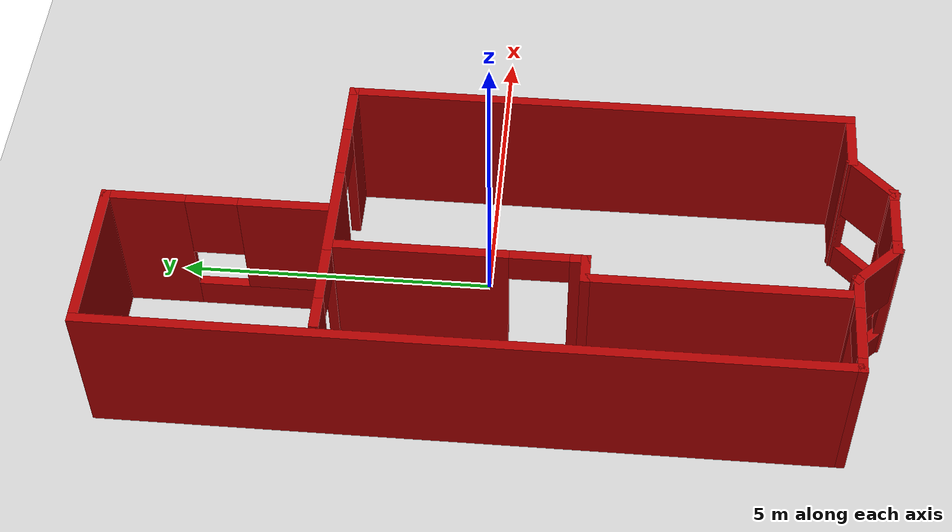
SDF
<sdf version="1.4">
 <world name="default">
  <physics type="ode">
   <ode><solver><type>quick</type><iters>50</iters><friction_model>cone_model</friction_model></solver></ode>
  </physics>
  <include><uri>model://ground_plane</uri></include>
  <light type="directional" name="sun_high">
   <pose>0 0 10 0 -0.5 0</pose>
   <diffuse>0.8 0.8 0.8 1</diffuse>
   <specular>0.2 0.2 0.2 1</specular>
   <attenuation>
    <range>1000</range>
    <constant>0.9</constant>
    <linear>0.01</linear>
    <quadratic>0.001</quadratic>
   </attenuation>
   <direction>-0.5 0.1 -0.9</direction>
  </light>
  <include><uri>model://building_downstairs</uri></include>
 </world>
</sdf>

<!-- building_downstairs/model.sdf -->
<sdf version='1.6'>
  <model name='building_downstairs'>
    <pose frame=''>-0.558499 -0.181364 0 0 -0 0</pose>
    <link name='Wall_0'>
      <collision name='Wall_0_Collision'>
        <geometry>
          <box>
            <size>8 0.15 2.5</size>
          </box>
        </geometry>
        <pose frame=''>0 0 1.25 0 -0 0</pose>
      </collision>
      <visual name='Wall_0_Visual'>
        <pose frame=''>0 0 1.25 0 -0 0</pose>
        <geometry>
          <box>
            <size>8 0.15 2.5</size>
          </box>
        </geometry>
        <material>
          <script>
            <uri>file://media/materials/scripts/gazebo.material</uri>
            <name>Gazebo/Grey</name>
          </script>
          <ambient>0.666667 0 0 1</ambient>
        </material>
        <meta>
          <layer>0</layer>
        </meta>
      </visual>
      <pose frame=''>2.38842 -1.43226 0 0 0 -1.5708</pose>
    </link>
    <link name='Wall_1'>
      <collision name='Wall_1_Collision'>
        <geometry>
          <box>
            <size>1.01154 0.15 2.5</size>
          </box>
        </geometry>
        <pose frame=''>0 0 1.25 0 -0 0</pose>
      </collision>
      <visual name='Wall_1_Visual'>
        <pose frame=''>0 0 1.25 0 -0 0</pose>
        <geometry>
          <box>
            <size>1.01154 0.15 2.5</size>
          </box>
        </geometry>
        <material>
          <script>
            <uri>file://media/materials/scripts/gazebo.material</uri>
            <name>Gazebo/Grey</name>
          </script>
          <ambient>0.666667 0 0 1</ambient>
        </material>
        <meta>
          <layer>0</layer>
        </meta>
      </visual>
      <pose frame=''>1.94443 -5.3581 0 0 0 -3.13963</pose>
    </link>
    <link name='Wall_11'>
      <pose frame=''>0.088421 2.49274 0 0 -0 3.14159</pose>
      <visual name='Wall_11_Visual_0'>
        <pose frame=''>-1.92602 0 1.25 0 -0 0</pose>
        <geometry>
          <box>
            <size>0.897963 0.15 2.5</size>
          </box>
        </geometry>
        <material>
          <script>
            <uri>file://media/materials/scripts/gazebo.material</uri>
            <name>Gazebo/Grey</name>
          </script>
          <ambient>0.666667 0 0 1</ambient>
        </material>
        <meta>
          <layer>0</layer>
        </meta>
      </visual>
      <collision name='Wall_11_Collision_0'>
        <geometry>
          <box>
            <size>0.897963 0.15 2.5</size>
          </box>
        </geometry>
        <pose frame=''>-1.92602 0 1.25 0 -0 0</pose>
      </collision>
      <visual name='Wall_11_Visual_1'>
        <pose frame=''>0.186164 0 1.25 0 -0 0</pose>
        <geometry>
          <box>
            <size>1.5264 0.15 2.5</size>
          </box>
        </geometry>
        <material>
          <script>
            <uri>file://media/materials/scripts/gazebo.material</uri>
            <name>Gazebo/Grey</name>
          </script>
          <ambient>0.666667 0 0 1</ambient>
        </material>
        <meta>
          <layer>0</layer>
        </meta>
      </visual>
      <collision name='Wall_11_Collision_1'>
        <geometry>
          <box>
            <size>1.5264 0.15 2.5</size>
          </box>
        </geometry>
        <pose frame=''>0.186164 0 1.25 0 -0 0</pose>
      </collision>
      <visual name='Wall_11_Visual_2'>
        <pose frame=''>2.11218 0 1.25 0 -0 0</pose>
        <geometry>
          <box>
            <size>0.525634 0.15 2.5</size>
          </box>
        </geometry>
        <material>
          <script>
            <uri>file://media/materials/scripts/gazebo.material</uri>
            <name>Gazebo/Grey</name>
          </script>
          <ambient>0.666667 0 0 1</ambient>
        </material>
        <meta>
          <layer>0</layer>
        </meta>
      </visual>
      <collision name='Wall_11_Collision_2'>
        <geometry>
          <box>
            <size>0.525634 0.15 2.5</size>
          </box>
        </geometry>
        <pose frame=''>2.11218 0 1.25 0 -0 0</pose>
      </collision>
      <visual name='Wall_11_Visual_3'>
        <pose frame=''>-1.02704 0 2.25 0 -0 0</pose>
        <geometry>
          <box>
            <size>0.9 0.15 0.5</size>
          </box>
        </geometry>
        <material>
          <script>
            <uri>file://media/materials/scripts/gazebo.material</uri>
            <name>Gazebo/Grey</name>
          </script>
          <ambient>0.666667 0 0 1</ambient>
        </material>
        <meta>
          <layer>0</layer>
        </meta>
      </visual>
      <collision name='Wall_11_Collision_3'>
        <geometry>
          <box>
            <size>0.9 0.15 0.5</size>
          </box>
        </geometry>
        <pose frame=''>-1.02704 0 2.25 0 -0 0</pose>
      </collision>
      <visual name='Wall_11_Visual_4'>
        <pose frame=''>1.39937 0 2.25 0 -0 0</pose>
        <geometry>
          <box>
            <size>0.9 0.15 0.5</size>
          </box>
        </geometry>
        <material>
          <script>
            <uri>file://media/materials/scripts/gazebo.material</uri>
            <name>Gazebo/Grey</name>
          </script>
          <ambient>0.666667 0 0 1</ambient>
        </material>
        <meta>
          <layer>0</layer>
        </meta>
      </visual>
      <collision name='Wall_11_Collision_4'>
        <geometry>
          <box>
            <size>0.9 0.15 0.5</size>
          </box>
        </geometry>
        <pose frame=''>1.39937 0 2.25 0 -0 0</pose>
      </collision>
    </link>
    <link name='Wall_13'>
      <pose frame=''>-0.73199 0.568977 0 0 0 -1.5708</pose>
      <visual name='Wall_13_Visual_0'>
        <pose frame=''>-0.607949 0 1.25 0 -0 0</pose>
        <geometry>
          <box>
            <size>2.7841 0.15 2.5</size>
          </box>
        </geometry>
        <material>
          <script>
            <uri>file://media/materials/scripts/gazebo.material</uri>
            <name>Gazebo/Grey</name>
          </script>
          <ambient>0.666667 0 0 1</ambient>
        </material>
        <meta>
          <layer>0</layer>
        </meta>
      </visual>
      <collision name='Wall_13_Collision_0'>
        <geometry>
          <box>
            <size>2.7841 0.15 2.5</size>
          </box>
        </geometry>
        <pose frame=''>-0.607949 0 1.25 0 -0 0</pose>
      </collision>
      <visual name='Wall_13_Visual_1'>
        <pose frame=''>1.84205 0 1.25 0 -0 0</pose>
        <geometry>
          <box>
            <size>0.315898 0.15 2.5</size>
          </box>
        </geometry>
        <material>
          <script>
            <uri>file://media/materials/scripts/gazebo.material</uri>
            <name>Gazebo/Grey</name>
          </script>
          <ambient>0.666667 0 0 1</ambient>
        </material>
        <meta>
          <layer>0</layer>
        </meta>
      </visual>
      <collision name='Wall_13_Collision_1'>
        <geometry>
          <box>
            <size>0.315898 0.15 2.5</size>
          </box>
        </geometry>
        <pose frame=''>1.84205 0 1.25 0 -0 0</pose>
      </collision>
      <visual name='Wall_13_Visual_2'>
        <pose frame=''>1.2341 0 2.25 0 -0 0</pose>
        <geometry>
          <box>
            <size>0.9 0.15 0.5</size>
          </box>
        </geometry>
        <material>
          <script>
            <uri>file://media/materials/scripts/gazebo.material</uri>
            <name>Gazebo/Grey</name>
          </script>
          <ambient>0.666667 0 0 1</ambient>
        </material>
        <meta>
          <layer>0</layer>
        </meta>
      </visual>
      <collision name='Wall_13_Collision_2'>
        <geometry>
          <box>
            <size>0.9 0.15 0.5</size>
          </box>
        </geometry>
        <pose frame=''>1.2341 0 2.25 0 -0 0</pose>
      </collision>
    </link>
    <link name='Wall_14'>
      <collision name='Wall_14_Collision'>
        <geometry>
          <box>
            <size>0.5 0.15 2.5</size>
          </box>
        </geometry>
        <pose frame=''>0 0 1.25 0 -0 0</pose>
      </collision>
      <visual name='Wall_14_Visual'>
        <pose frame=''>0 0 1.25 0 -0 0</pose>
        <geometry>
          <box>
            <size>0.5 0.15 2.5</size>
          </box>
        </geometry>
        <material>
          <script>
            <uri>file://media/materials/scripts/gazebo.material</uri>
            <name>Gazebo/Grey</name>
          </script>
          <ambient>0.666667 0 0 1</ambient>
        </material>
        <meta>
          <layer>0</layer>
        </meta>
      </visual>
      <pose frame=''>-0.90699 -1.35602 0 0 -0 3.14159</pose>
    </link>
    <link name='Wall_15'>
      <collision name='Wall_15_Collision'>
        <geometry>
          <box>
            <size>4 0.15 2.5</size>
          </box>
        </geometry>
        <pose frame=''>0 0 1.25 0 -0 0</pose>
      </collision>
      <visual name='Wall_15_Visual'>
        <pose frame=''>0 0 1.25 0 -0 0</pose>
        <geometry>
          <box>
            <size>4 0.15 2.5</size>
          </box>
        </geometry>
        <material>
          <script>
            <uri>file://media/materials/scripts/gazebo.material</uri>
            <name>Gazebo/Grey</name>
          </script>
          <ambient>0.666667 0 0 1</ambient>
        </material>
        <meta>
          <layer>0</layer>
        </meta>
      </visual>
      <pose frame=''>-1.08199 -3.28102 0 0 0 -1.5708</pose>
    </link>
    <link name='Wall_2'>
      <pose frame=''>1.21314 -5.65947 0 0 0 -2.35619</pose>
      <visual name='Wall_2_Visual_0'>
        <pose frame=''>-0.446339 0 1.25 0 -0 0</pose>
        <geometry>
          <box>
            <size>0.107323 0.15 2.5</size>
          </box>
        </geometry>
        <material>
          <script>
            <uri>file://media/materials/scripts/gazebo.material</uri>
            <name>Gazebo/Grey</name>
          </script>
          <ambient>0.666667 0 0 1</ambient>
        </material>
        <meta>
          <layer>0</layer>
        </meta>
      </visual>
      <collision name='Wall_2_Collision_0'>
        <geometry>
          <box>
            <size>0.107323 0.15 2.5</size>
          </box>
        </geometry>
        <pose frame=''>-0.446339 0 1.25 0 -0 0</pose>
      </collision>
      <visual name='Wall_2_Visual_1'>
        <pose frame=''>0.053661 0 0.25 0 -0 0</pose>
        <geometry>
          <box>
            <size>0.892677 0.15 0.5</size>
          </box>
        </geometry>
        <material>
          <script>
            <uri>file://media/materials/scripts/gazebo.material</uri>
            <name>Gazebo/Grey</name>
          </script>
          <ambient>0.666667 0 0 1</ambient>
        </material>
        <meta>
          <layer>0</layer>
        </meta>
      </visual>
      <collision name='Wall_2_Collision_1'>
        <geometry>
          <box>
            <size>0.892677 0.15 0.5</size>
          </box>
        </geometry>
        <pose frame=''>0.053661 0 0.25 0 -0 0</pose>
      </collision>
      <visual name='Wall_2_Visual_2'>
        <pose frame=''>0.453661 0 1.5 0 -0 0</pose>
        <geometry>
          <box>
            <size>0.092677 0.15 2</size>
          </box>
        </geometry>
        <material>
          <script>
            <uri>file://media/materials/scripts/gazebo.material</uri>
            <name>Gazebo/Grey</name>
          </script>
          <ambient>0.666667 0 0 1</ambient>
        </material>
        <meta>
          <layer>0</layer>
        </meta>
      </visual>
      <collision name='Wall_2_Collision_2'>
        <geometry>
          <box>
            <size>0.092677 0.15 2</size>
          </box>
        </geometry>
        <pose frame=''>0.453661 0 1.5 0 -0 0</pose>
      </collision>
      <visual name='Wall_2_Visual_3'>
        <pose frame=''>0.007323 0 1.9 0 -0 0</pose>
        <geometry>
          <box>
            <size>0.8 0.15 1.2</size>
          </box>
        </geometry>
        <material>
          <script>
            <uri>file://media/materials/scripts/gazebo.material</uri>
            <name>Gazebo/Grey</name>
          </script>
          <ambient>0.666667 0 0 1</ambient>
        </material>
        <meta>
          <layer>0</layer>
        </meta>
      </visual>
      <collision name='Wall_2_Collision_3'>
        <geometry>
          <box>
            <size>0.8 0.15 1.2</size>
          </box>
        </geometry>
        <pose frame=''>0.007323 0 1.9 0 -0 0</pose>
      </collision>
    </link>
    <link name='Wall_3'>
      <pose frame=''>0.36262 -5.95999 0 0 -0 3.14159</pose>
      <visual name='Wall_3_Visual_0'>
        <pose frame=''>-0.521836 0 1.25 0 -0 0</pose>
        <geometry>
          <box>
            <size>0.206328 0.15 2.5</size>
          </box>
        </geometry>
        <material>
          <script>
            <uri>file://media/materials/scripts/gazebo.material</uri>
            <name>Gazebo/Grey</name>
          </script>
          <ambient>0.666667 0 0 1</ambient>
        </material>
        <meta>
          <layer>0</layer>
        </meta>
      </visual>
      <collision name='Wall_3_Collision_0'>
        <geometry>
          <box>
            <size>0.206328 0.15 2.5</size>
          </box>
        </geometry>
        <pose frame=''>-0.521836 0 1.25 0 -0 0</pose>
      </collision>
      <visual name='Wall_3_Visual_1'>
        <pose frame=''>0.103164 0 0.25 0 -0 0</pose>
        <geometry>
          <box>
            <size>1.04367 0.15 0.5</size>
          </box>
        </geometry>
        <material>
          <script>
            <uri>file://media/materials/scripts/gazebo.material</uri>
            <name>Gazebo/Grey</name>
          </script>
          <ambient>0.666667 0 0 1</ambient>
        </material>
        <meta>
          <layer>0</layer>
        </meta>
      </visual>
      <collision name='Wall_3_Collision_1'>
        <geometry>
          <box>
            <size>1.04367 0.15 0.5</size>
          </box>
        </geometry>
        <pose frame=''>0.103164 0 0.25 0 -0 0</pose>
      </collision>
      <visual name='Wall_3_Visual_2'>
        <pose frame=''>0.503164 0 1.5 0 -0 0</pose>
        <geometry>
          <box>
            <size>0.243672 0.15 2</size>
          </box>
        </geometry>
        <material>
          <script>
            <uri>file://media/materials/scripts/gazebo.material</uri>
            <name>Gazebo/Grey</name>
          </script>
          <ambient>0.666667 0 0 1</ambient>
        </material>
        <meta>
          <layer>0</layer>
        </meta>
      </visual>
      <collision name='Wall_3_Collision_2'>
        <geometry>
          <box>
            <size>0.243672 0.15 2</size>
          </box>
        </geometry>
        <pose frame=''>0.503164 0 1.5 0 -0 0</pose>
      </collision>
      <visual name='Wall_3_Visual_3'>
        <pose frame=''>-0.018672 0 1.9 0 -0 0</pose>
        <geometry>
          <box>
            <size>0.8 0.15 1.2</size>
          </box>
        </geometry>
        <material>
          <script>
            <uri>file://media/materials/scripts/gazebo.material</uri>
            <name>Gazebo/Grey</name>
          </script>
          <ambient>0.666667 0 0 1</ambient>
        </material>
        <meta>
          <layer>0</layer>
        </meta>
      </visual>
      <collision name='Wall_3_Collision_3'>
        <geometry>
          <box>
            <size>0.8 0.15 1.2</size>
          </box>
        </geometry>
        <pose frame=''>-0.018672 0 1.9 0 -0 0</pose>
      </collision>
    </link>
    <link name='Wall_4'>
      <pose frame=''>-0.4879 -5.65947 0 0 -0 2.35619</pose>
      <visual name='Wall_4_Visual_0'>
        <pose frame=''>-0.466865 0 1.25 0 -0 0</pose>
        <geometry>
          <box>
            <size>0.066271 0.15 2.5</size>
          </box>
        </geometry>
        <material>
          <script>
            <uri>file://media/materials/scripts/gazebo.material</uri>
            <name>Gazebo/Grey</name>
          </script>
          <ambient>0.666667 0 0 1</ambient>
        </material>
        <meta>
          <layer>0</layer>
        </meta>
      </visual>
      <collision name='Wall_4_Collision_0'>
        <geometry>
          <box>
            <size>0.066271 0.15 2.5</size>
          </box>
        </geometry>
        <pose frame=''>-0.466865 0 1.25 0 -0 0</pose>
      </collision>
      <visual name='Wall_4_Visual_1'>
        <pose frame=''>0.033135 0 0.25 0 -0 0</pose>
        <geometry>
          <box>
            <size>0.933729 0.15 0.5</size>
          </box>
        </geometry>
        <material>
          <script>
            <uri>file://media/materials/scripts/gazebo.material</uri>
            <name>Gazebo/Grey</name>
          </script>
          <ambient>0.666667 0 0 1</ambient>
        </material>
        <meta>
          <layer>0</layer>
        </meta>
      </visual>
      <collision name='Wall_4_Collision_1'>
        <geometry>
          <box>
            <size>0.933729 0.15 0.5</size>
          </box>
        </geometry>
        <pose frame=''>0.033135 0 0.25 0 -0 0</pose>
      </collision>
      <visual name='Wall_4_Visual_2'>
        <pose frame=''>0.433135 0 1.5 0 -0 0</pose>
        <geometry>
          <box>
            <size>0.133729 0.15 2</size>
          </box>
        </geometry>
        <material>
          <script>
            <uri>file://media/materials/scripts/gazebo.material</uri>
            <name>Gazebo/Grey</name>
          </script>
          <ambient>0.666667 0 0 1</ambient>
        </material>
        <meta>
          <layer>0</layer>
        </meta>
      </visual>
      <collision name='Wall_4_Collision_2'>
        <geometry>
          <box>
            <size>0.133729 0.15 2</size>
          </box>
        </geometry>
        <pose frame=''>0.433135 0 1.5 0 -0 0</pose>
      </collision>
      <visual name='Wall_4_Visual_3'>
        <pose frame=''>-0.033729 0 1.9 0 -0 0</pose>
        <geometry>
          <box>
            <size>0.8 0.15 1.2</size>
          </box>
        </geometry>
        <material>
          <script>
            <uri>file://media/materials/scripts/gazebo.material</uri>
            <name>Gazebo/Grey</name>
          </script>
          <ambient>0.666667 0 0 1</ambient>
        </material>
        <meta>
          <layer>0</layer>
        </meta>
      </visual>
      <collision name='Wall_4_Collision_3'>
        <geometry>
          <box>
            <size>0.8 0.15 1.2</size>
          </box>
        </geometry>
        <pose frame=''>-0.033729 0 1.9 0 -0 0</pose>
      </collision>
    </link>
    <link name='Wall_5'>
      <pose frame=''>-1.58842 -5.35895 0 0 -0 3.14159</pose>
      <visual name='Wall_5_Visual_0'>
        <pose frame=''>-0.574229 0 1.25 0 -0 0</pose>
        <geometry>
          <box>
            <size>0.601543 0.15 2.5</size>
          </box>
        </geometry>
        <material>
          <script>
            <uri>file://media/materials/scripts/gazebo.material</uri>
            <name>Gazebo/Grey</name>
          </script>
          <ambient>0.666667 0 0 1</ambient>
        </material>
        <meta>
          <layer>0</layer>
        </meta>
      </visual>
      <collision name='Wall_5_Collision_0'>
        <geometry>
          <box>
            <size>0.601543 0.15 2.5</size>
          </box>
        </geometry>
        <pose frame=''>-0.574229 0 1.25 0 -0 0</pose>
      </collision>
      <visual name='Wall_5_Visual_1'>
        <pose frame=''>0.750771 0 1.25 0 -0 0</pose>
        <geometry>
          <box>
            <size>0.248457 0.15 2.5</size>
          </box>
        </geometry>
        <material>
          <script>
            <uri>file://media/materials/scripts/gazebo.material</uri>
            <name>Gazebo/Grey</name>
          </script>
          <ambient>0.666667 0 0 1</ambient>
        </material>
        <meta>
          <layer>0</layer>
        </meta>
      </visual>
      <collision name='Wall_5_Collision_1'>
        <geometry>
          <box>
            <size>0.248457 0.15 2.5</size>
          </box>
        </geometry>
        <pose frame=''>0.750771 0 1.25 0 -0 0</pose>
      </collision>
      <visual name='Wall_5_Visual_2'>
        <pose frame=''>0.176543 0 2.25 0 -0 0</pose>
        <geometry>
          <box>
            <size>0.9 0.15 0.5</size>
          </box>
        </geometry>
        <material>
          <script>
            <uri>file://media/materials/scripts/gazebo.material</uri>
            <name>Gazebo/Grey</name>
          </script>
          <ambient>0.666667 0 0 1</ambient>
        </material>
        <meta>
          <layer>0</layer>
        </meta>
      </visual>
      <collision name='Wall_5_Collision_2'>
        <geometry>
          <box>
            <size>0.9 0.15 0.5</size>
          </box>
        </geometry>
        <pose frame=''>0.176543 0 2.25 0 -0 0</pose>
      </collision>
    </link>
    <link name='Wall_6'>
      <collision name='Wall_6_Collision'>
        <geometry>
          <box>
            <size>11.5 0.15 2.5</size>
          </box>
        </geometry>
        <pose frame=''>0 0 1.25 0 -0 0</pose>
      </collision>
      <visual name='Wall_6_Visual'>
        <pose frame=''>0 0 1.25 0 -0 0</pose>
        <geometry>
          <box>
            <size>11.5 0.15 2.5</size>
          </box>
        </geometry>
        <material>
          <script>
            <uri>file://media/materials/scripts/gazebo.material</uri>
            <name>Gazebo/Grey</name>
          </script>
          <ambient>0.666667 0 0 1</ambient>
        </material>
        <meta>
          <layer>0</layer>
        </meta>
      </visual>
      <pose frame=''>-2.38842 0.316053 0 0 -0 1.5708</pose>
    </link>
    <link name='Wall_7'>
      <collision name='Wall_7_Collision'>
        <geometry>
          <box>
            <size>2.5 0.15 2.5</size>
          </box>
        </geometry>
        <pose frame=''>0 0 1.25 0 -0 0</pose>
      </collision>
      <visual name='Wall_7_Visual'>
        <pose frame=''>0 0 1.25 0 -0 0</pose>
        <geometry>
          <box>
            <size>2.5 0.15 2.5</size>
          </box>
        </geometry>
        <material>
          <script>
            <uri>file://media/materials/scripts/gazebo.material</uri>
            <name>Gazebo/Grey</name>
          </script>
          <ambient>0.666667 0 0 1</ambient>
        </material>
        <meta>
          <layer>0</layer>
        </meta>
      </visual>
      <pose frame=''>-1.21342 5.99105 0 0 -0 0</pose>
    </link>
    <link name='Wall_8'>
      <pose frame=''>-0.03842 4.31605 0 0 0 -1.5708</pose>
      <visual name='Wall_8_Visual_0'>
        <pose frame=''>-1.0977 0 1.25 0 -0 0</pose>
        <geometry>
          <box>
            <size>1.30459 0.15 2.5</size>
          </box>
        </geometry>
        <material>
          <script>
            <uri>file://media/materials/scripts/gazebo.material</uri>
            <name>Gazebo/Grey</name>
          </script>
          <ambient>0.666667 0 0 1</ambient>
        </material>
        <meta>
          <layer>0</layer>
        </meta>
      </visual>
      <collision name='Wall_8_Collision_0'>
        <geometry>
          <box>
            <size>1.30459 0.15 2.5</size>
          </box>
        </geometry>
        <pose frame=''>-1.0977 0 1.25 0 -0 0</pose>
      </collision>
      <visual name='Wall_8_Visual_1'>
        <pose frame=''>0.652295 0 0.25 0 -0 0</pose>
        <geometry>
          <box>
            <size>2.19541 0.15 0.5</size>
          </box>
        </geometry>
        <material>
          <script>
            <uri>file://media/materials/scripts/gazebo.material</uri>
            <name>Gazebo/Grey</name>
          </script>
          <ambient>0.666667 0 0 1</ambient>
        </material>
        <meta>
          <layer>0</layer>
        </meta>
      </visual>
      <collision name='Wall_8_Collision_1'>
        <geometry>
          <box>
            <size>2.19541 0.15 0.5</size>
          </box>
        </geometry>
        <pose frame=''>0.652295 0 0.25 0 -0 0</pose>
      </collision>
      <visual name='Wall_8_Visual_2'>
        <pose frame=''>1.05229 0 1.5 0 -0 0</pose>
        <geometry>
          <box>
            <size>1.39541 0.15 2</size>
          </box>
        </geometry>
        <material>
          <script>
            <uri>file://media/materials/scripts/gazebo.material</uri>
            <name>Gazebo/Grey</name>
          </script>
          <ambient>0.666667 0 0 1</ambient>
        </material>
        <meta>
          <layer>0</layer>
        </meta>
      </visual>
      <collision name='Wall_8_Collision_2'>
        <geometry>
          <box>
            <size>1.39541 0.15 2</size>
          </box>
        </geometry>
        <pose frame=''>1.05229 0 1.5 0 -0 0</pose>
      </collision>
      <visual name='Wall_8_Visual_3'>
        <pose frame=''>-0.045409 0 1.9 0 -0 0</pose>
        <geometry>
          <box>
            <size>0.8 0.15 1.2</size>
          </box>
        </geometry>
        <material>
          <script>
            <uri>file://media/materials/scripts/gazebo.material</uri>
            <name>Gazebo/Grey</name>
          </script>
          <ambient>0.666667 0 0 1</ambient>
        </material>
        <meta>
          <layer>0</layer>
        </meta>
      </visual>
      <collision name='Wall_8_Collision_3'>
        <geometry>
          <box>
            <size>0.8 0.15 1.2</size>
          </box>
        </geometry>
        <pose frame=''>-0.045409 0 1.9 0 -0 0</pose>
      </collision>
    </link>
    <static>1</static>
  </model>
</sdf>
